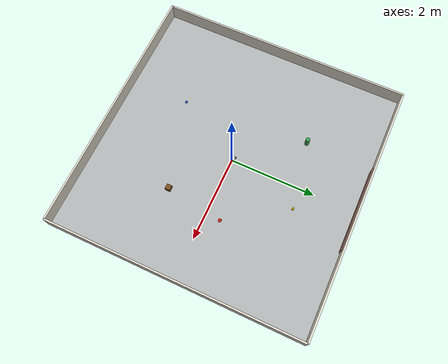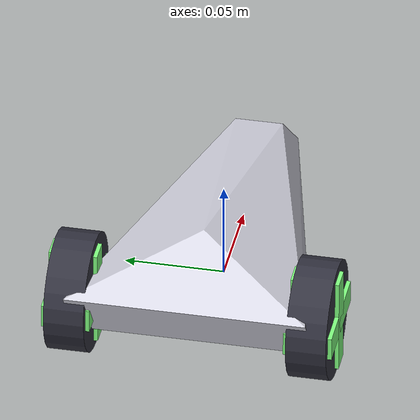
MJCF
<!-- A small textured room for the kornia robot demo. The car is MuJoCo's example car (Apache-2.0),
     with a forward-looking camera added. Sizes are in metres; the car is about 20 cm long. -->
<mujoco model="kornia_robot_room">
  <compiler autolimits="true"/>
  <option timestep="0.002"/>

  <asset>
    <texture name="floor" type="2d" builtin="checker" width="512" height="512" rgb1=".78 .78 .74" rgb2=".55 .58 .62" mark="edge" markrgb=".35 .35 .35"/>
    <material name="floor" texture="floor" texrepeat="12 12" texuniform="true" reflectance=".1"/>
    <texture name="wall" type="2d" builtin="flat" width="512" height="512" rgb1=".86 .84 .78" mark="random" random=".15" markrgb=".45 .42 .38"/>
    <material name="wall" texture="wall" texrepeat="8 1"/>
    <texture name="poster" type="2d" builtin="checker" width="256" height="256" rgb1=".95 .55 .15" rgb2=".15 .25 .55" mark="cross" markrgb="1 1 1"/>
    <material name="poster" texture="poster" texrepeat="3 2"/>
    <texture name="crate" type="2d" builtin="gradient" width="128" height="128" rgb1=".55 .35 .15" rgb2=".35 .2 .08" mark="edge" markrgb=".2 .1 0"/>
    <material name="crate" texture="crate" texrepeat="2 2"/>
    <mesh name="chasis" scale=".01 .006 .0015"
      vertex=" 9   2   0
              -10  10  10
               9  -2   0
               10  3  -10
               10 -3  -10
              -8   10 -10
              -10 -10  10
              -8  -10 -10
              -5   0   20"/>
  </asset>

  <default>
    <joint damping=".03" actuatorfrcrange="-0.5 0.5"/>
    <default class="wheel">
      <geom type="cylinder" size=".03 .01" rgba=".2 .2 .25 1"/>
    </default>
    <default class="decor">
      <site type="box" rgba=".5 1 .5 1"/>
    </default>
    <default class="wallgeom">
      <geom type="box" material="wall"/>
    </default>
  </default>

  <worldbody>
    <light pos="0 0 3" dir="0 0 -1" diffuse=".8 .8 .8" specular=".2 .2 .2" castshadow="true"/>
    <geom name="floor" type="plane" size="3 3 .05" material="floor"/>
    <geom name="wall_n" class="wallgeom" pos="0 3 .2" size="3 .02 .2"/>
    <geom name="wall_s" class="wallgeom" pos="0 -3 .2" size="3 .02 .2"/>
    <geom name="wall_e" class="wallgeom" pos="3 0 .2" size=".02 3 .2"/>
    <geom name="wall_w" class="wallgeom" pos="-3 0 .2" size=".02 3 .2"/>
    <geom name="poster" type="box" pos="0 2.96 .22" size="1 .01 .15" material="poster"/>

    <body name="crate" pos="1.2 -1.0 .06">
      <geom type="box" size=".06 .06 .06" material="crate"/>
    </body>
    <body name="pillar" pos="-1.1 1.4 .12">
      <geom type="cylinder" size=".05 .12" rgba=".2 .6 .3 1"/>
    </body>
    <body name="cone" pos=".5 1.7 .06">
      <geom type="capsule" size=".025 .04" rgba=".95 .75 .1 1"/>
    </body>
    <body name="ball" pos="1.4 .35 .04">
      <freejoint/>
      <geom name="ball" type="sphere" size=".04" rgba=".9 .12 .12 1" mass=".05"/>
    </body>
    <body name="ball2" pos="-.9 -1.6 .03">
      <freejoint/>
      <geom type="sphere" size=".03" rgba=".15 .35 .9 1" mass=".04"/>
    </body>

    <body name="car" pos="0 0 .03">
      <freejoint/>
      <geom name="chasis" type="mesh" mesh="chasis" rgba=".85 .85 .9 1"/>
      <geom name="front wheel" pos=".08 0 -.015" type="sphere" size=".015" condim="1" priority="1"/>
      <camera name="front" pos=".09 0 .045" xyaxes="0 -1 0 0 0 1" fovy="65"/>
      <body name="left wheel" pos="-.07 .06 0" zaxis="0 1 0">
        <joint name="left"/>
        <geom class="wheel"/>
        <site class="decor" size=".006 .025 .012"/>
        <site class="decor" size=".025 .006 .012"/>
      </body>
      <body name="right wheel" pos="-.07 -.06 0" zaxis="0 1 0">
        <joint name="right"/>
        <geom class="wheel"/>
        <site class="decor" size=".006 .025 .012"/>
        <site class="decor" size=".025 .006 .012"/>
      </body>
    </body>
  </worldbody>

  <tendon>
    <fixed name="forward">
      <joint joint="left" coef=".5"/>
      <joint joint="right" coef=".5"/>
    </fixed>
    <fixed name="turn">
      <joint joint="left" coef="-.5"/>
      <joint joint="right" coef=".5"/>
    </fixed>
  </tendon>

  <actuator>
    <motor name="forward" tendon="forward" ctrlrange="-1 1"/>
    <motor name="turn" tendon="turn" ctrlrange="-1 1"/>
  </actuator>
</mujoco>
